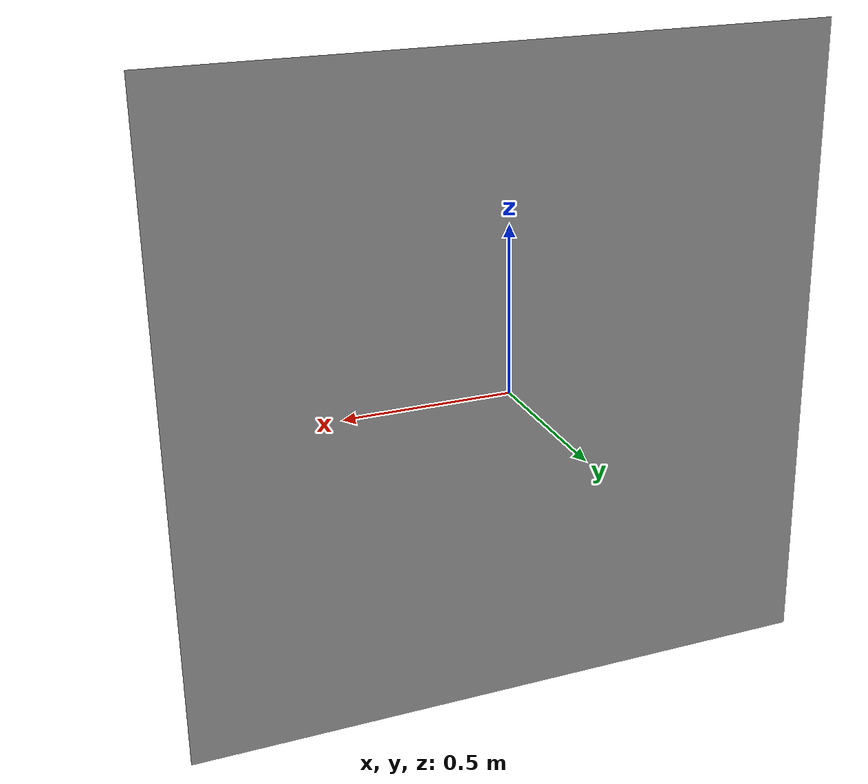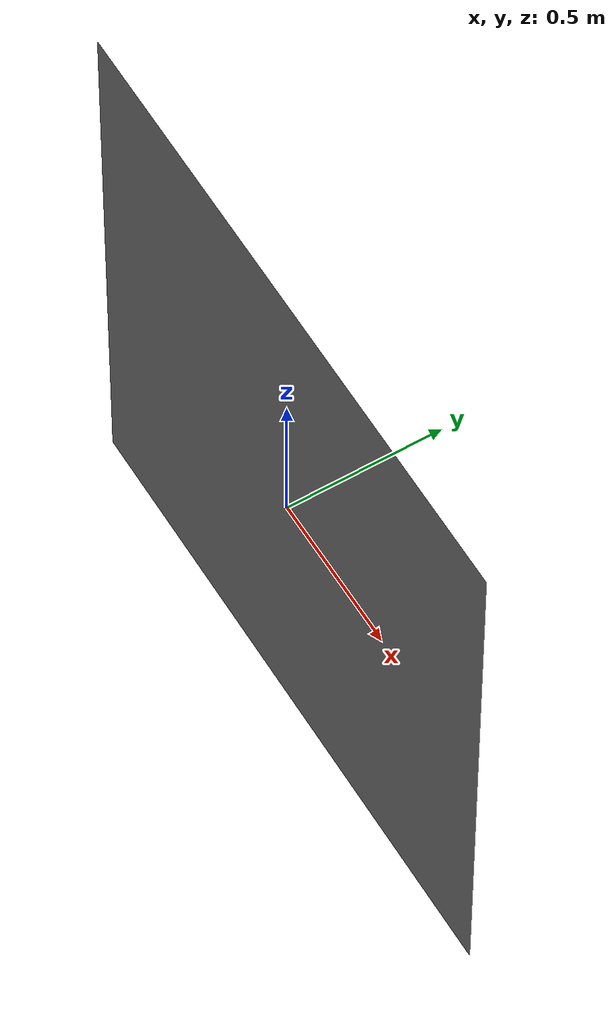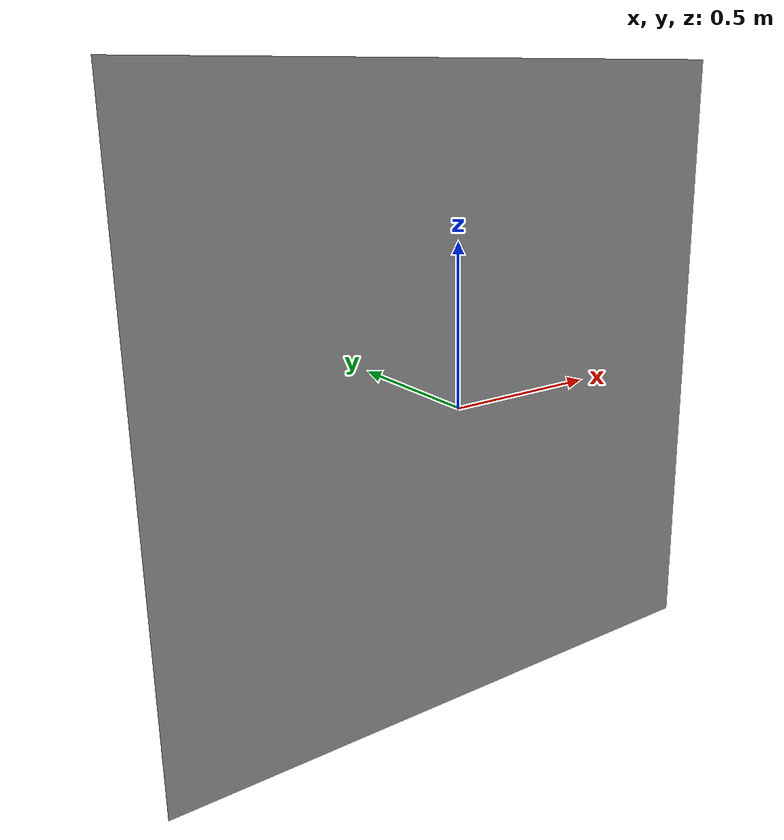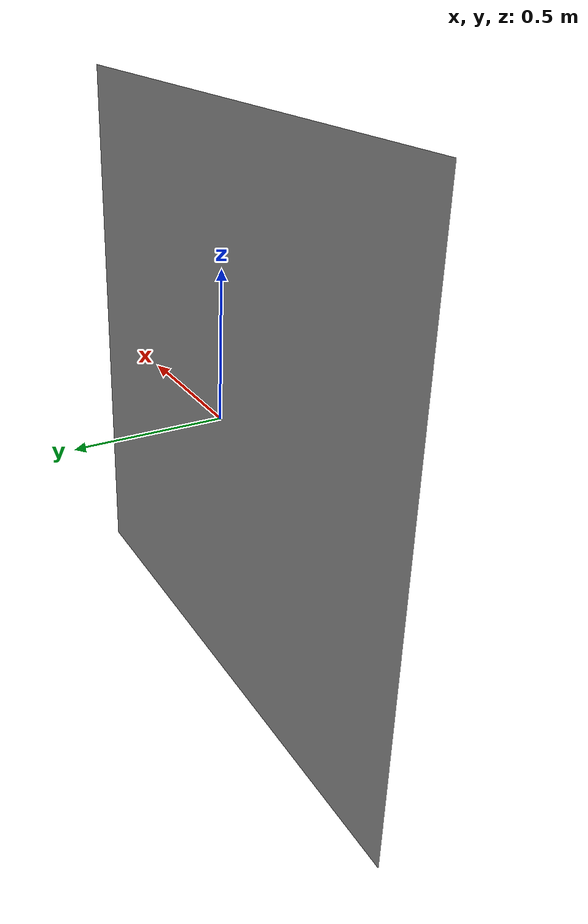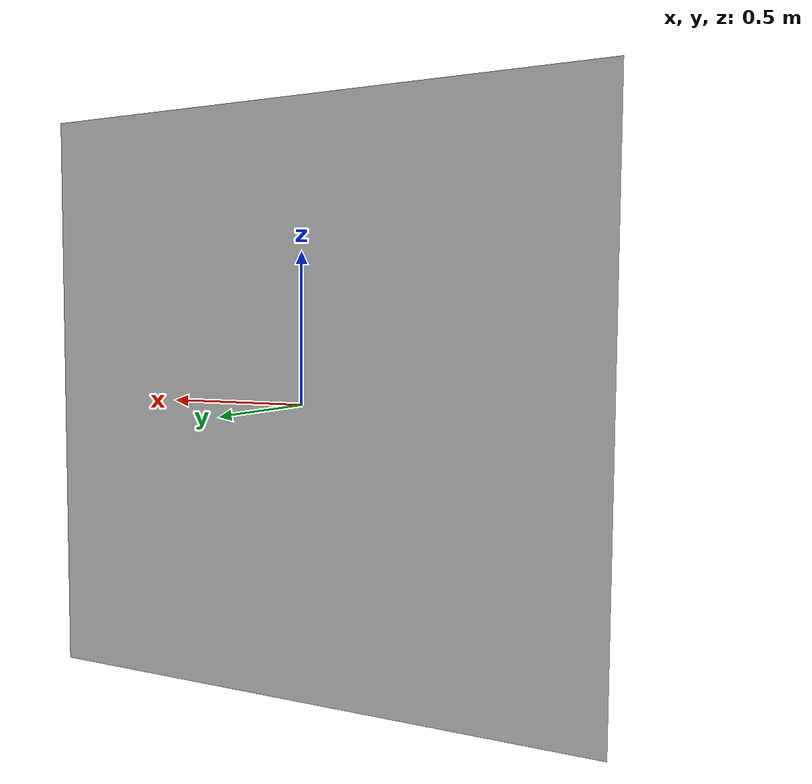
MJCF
<mujoco model="mesh_model">
        <asset>
            <mesh name="room" file="room.obj" />
        </asset>
        <worldbody>
            <body>
                <geom type="mesh" mesh="room" contype="0" conaffinity="0" rgba=".6 .6 .6 1"/>
            </body>
        </worldbody>
    </mujoco>
